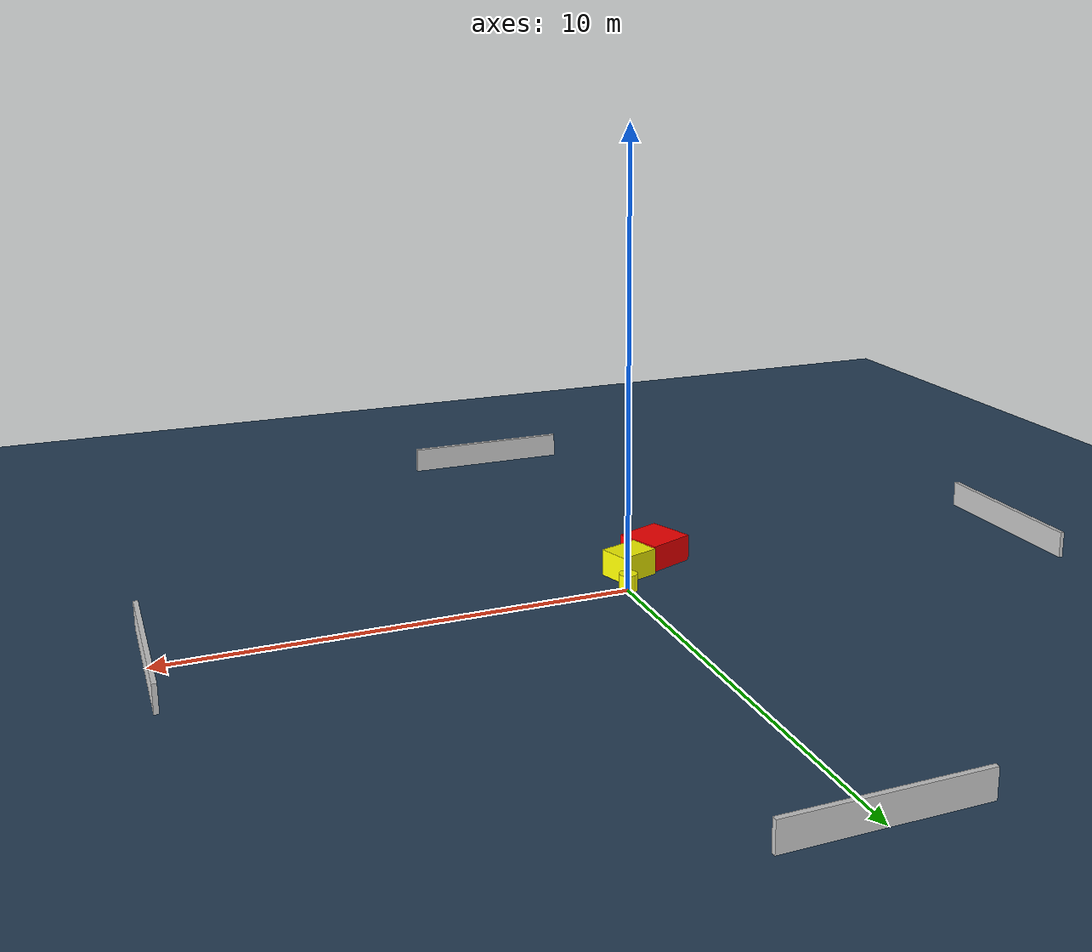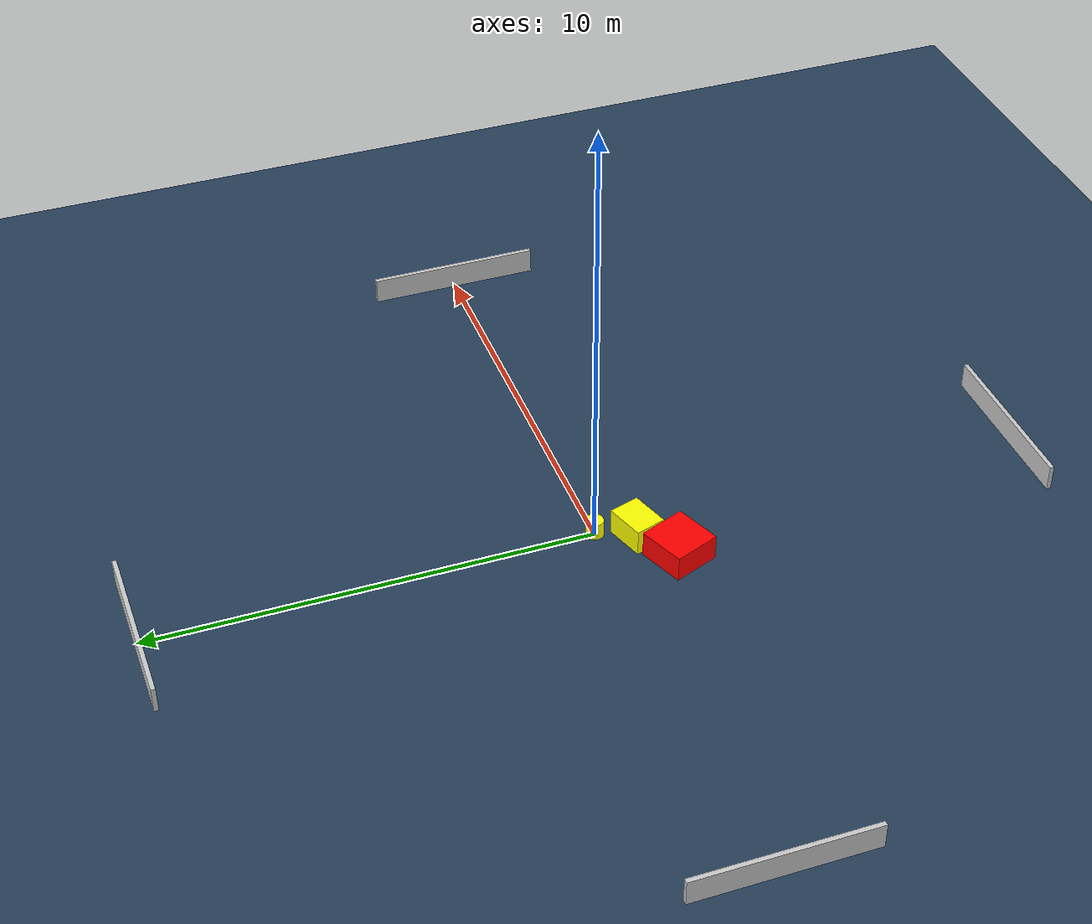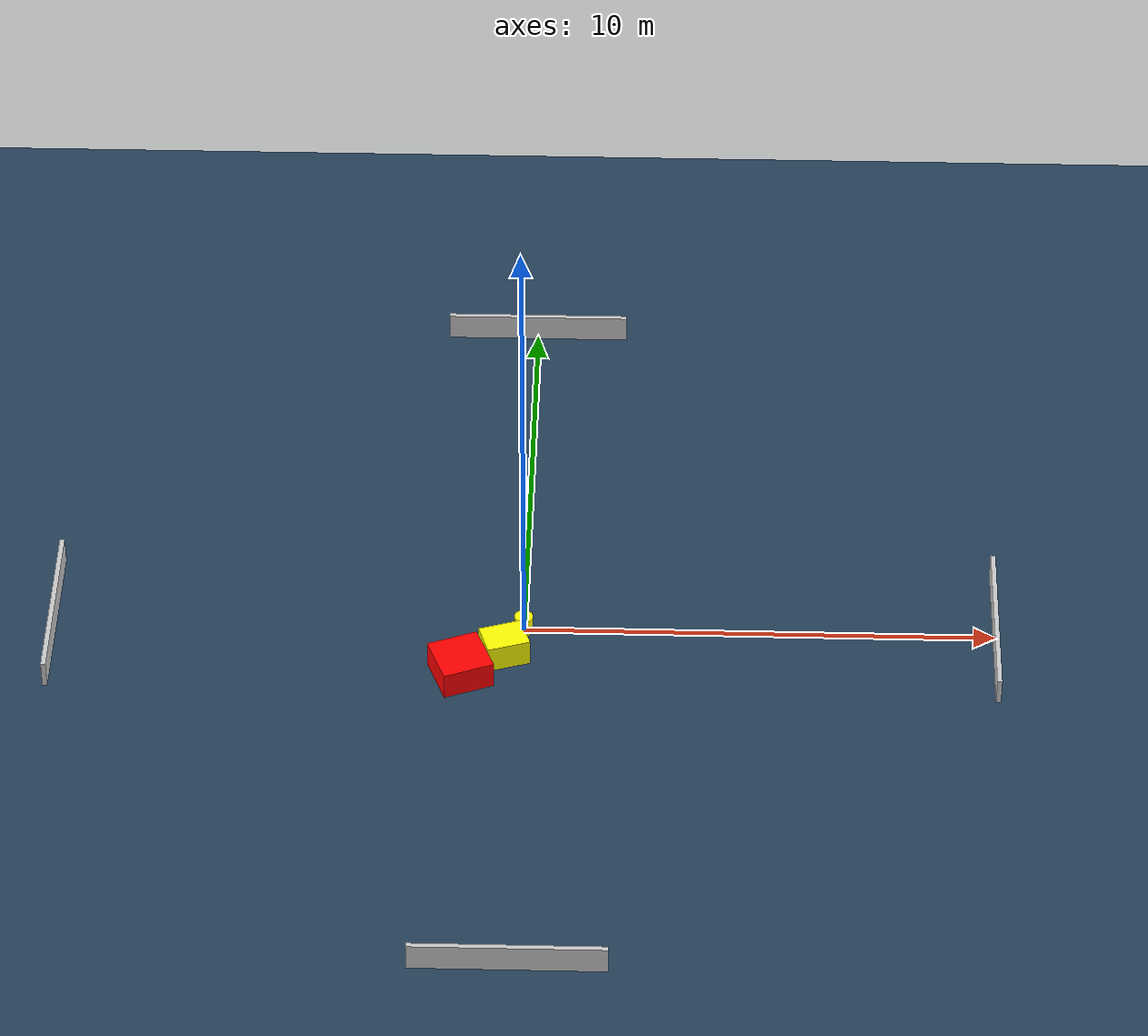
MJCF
<?xml version="1.0" ?>
<mujoco model="generated_environment">
  <option timestep="0.01" integrator="RK4" cone="elliptic"/>
  <default>
    <geom density="1"/>
  </default>
  <asset>
    <texture builtin="gradient" height="3072" name="skybox" rgb1="0.3 0.5 0.7" rgb2="0 0 0" type="skybox" width="512"/>
    <texture builtin="checker" height="300" name="groundplane" rgb1="0.2 0.3 0.4" rgb2="0.1 0.2 0.3" type="2d" width="300"/>
    <material name="groundplane" reflectance="0.2" texrepeat="5 5" texture="groundplane"/>
  </asset>
  <worldbody>
    <light dir="0 0 -1" directional="true" pos="0 0 1.5"/>
    <geom condim="3" friction="0.5 0.005 0.001" material="groundplane" name="floor" pos="0 0 0" size="0 0 0.05" type="plane"/>
    <body name="walls">
      <geom name="wall_1" condim="4" pos="-10.0 0.0 0.3" rgba="0.800000011920929 0.800000011920929 0.800000011920929 1.0" size="0.05 2.0 0.3" type="box"/>
      <geom name="wall_2" condim="4" pos="10.0 0.0 0.3" rgba="0.800000011920929 0.800000011920929 0.800000011920929 1.0" size="0.05 2.0 0.3" type="box"/>
      <geom name="wall_3" condim="4" pos="0.0 -10.0 0.3" rgba="0.800000011920929 0.800000011920929 0.800000011920929 1.0" size="2.0 0.05 0.3" type="box"/>
      <geom name="wall_4" condim="4" pos="0.0 10.0 0.3" rgba="0.800000011920929 0.800000011920929 0.800000011920929 1.0" size="2.0 0.05 0.3" type="box"/>
    </body>
    <body name="robot">
      <joint name="joint_x" type="slide" pos="0 0 0" axis="1 0 0"/>
      <joint name="joint_y" type="slide" pos="0 0 0" axis="0 1 0"/>
      <geom name="robot" type="cylinder" pos="0.0 0.0 0.2" size="0.2 0.2 0.0" mass="5.0" friction="1.0 0.005 0.0001" condim="4" rgba="1.0 1.0 0.0 1.0"/>
    </body>
    <body name="obstacle_1_movable">
      <geom name="obstacle_1_movable" condim="4" pos="-0.3807848812381638 -0.834069075192051 0.3" euler="0 0 287.8847403556806" friction="0.0 0.005 0.001" rgba="1.0 1.0 0.0 1.0" size="0.3572918153123379 0.4620624821280369 0.3" type="box" mass="0.1"/>
      <joint type="free"/>
    </body>
    <body name="obstacle_2_static">
      <geom name="obstacle_2_static" condim="4" pos="-1.2813538374209237 -1.4466226843861898 0.3" euler="0 0 111.55935542166941" friction="0.0 0.005 0.001" rgba="1.0 0.0 0.0 1.0" size="0.5458886106052623 0.5511360590060523 0.3" type="box"/>
    </body>
  </worldbody>
  <actuator>
    <motor name="actuator_x" joint="joint_x" gear="1" ctrlrange="-1 1"/>
    <motor name="actuator_y" joint="joint_y" gear="1" ctrlrange="-1 1"/>
  </actuator>
</mujoco>
